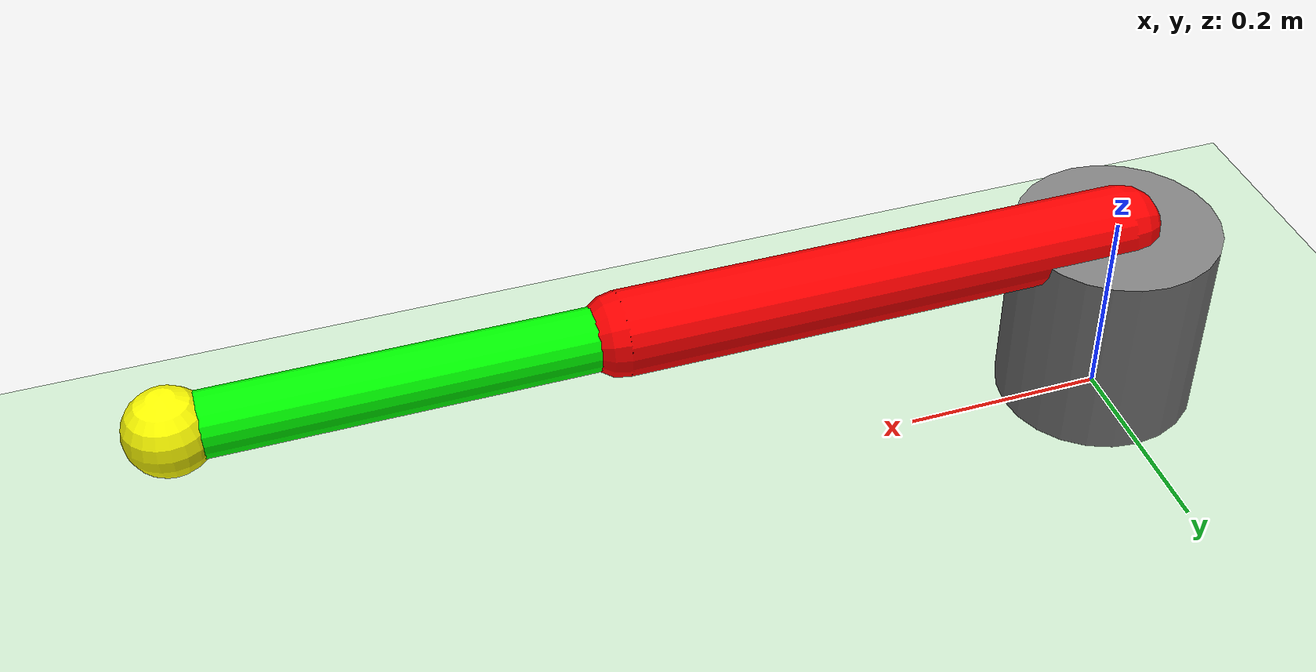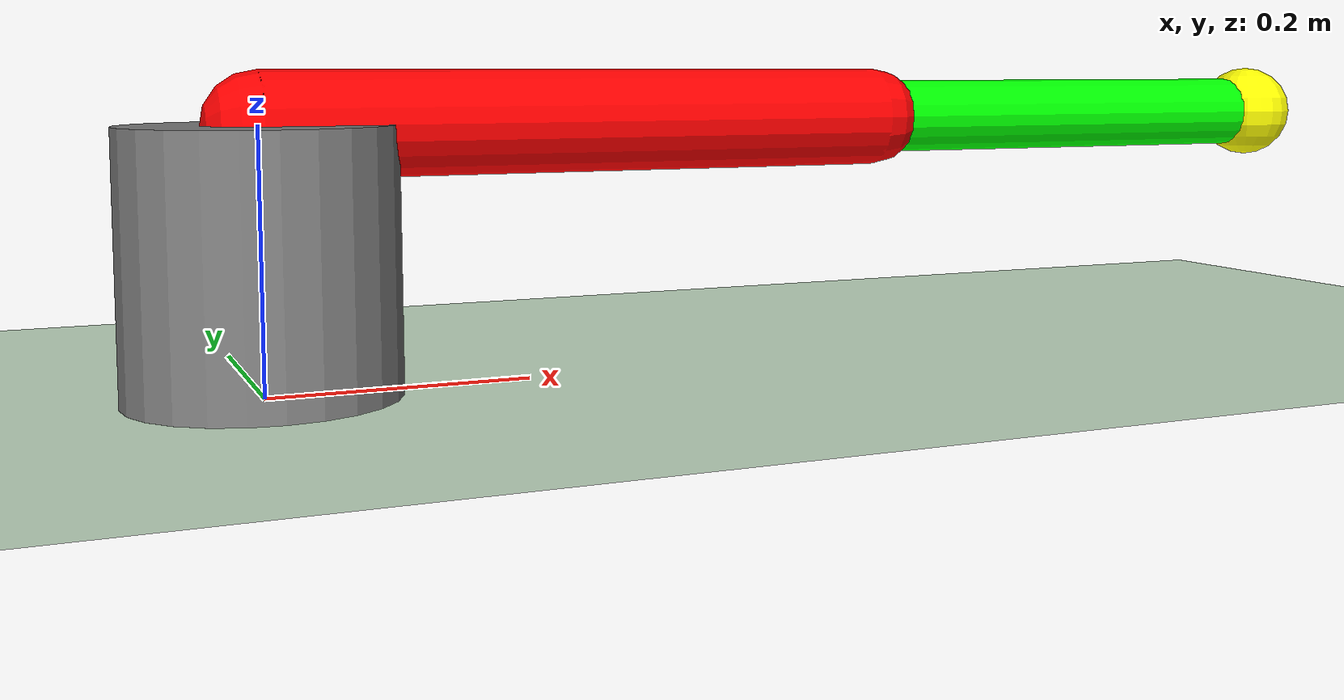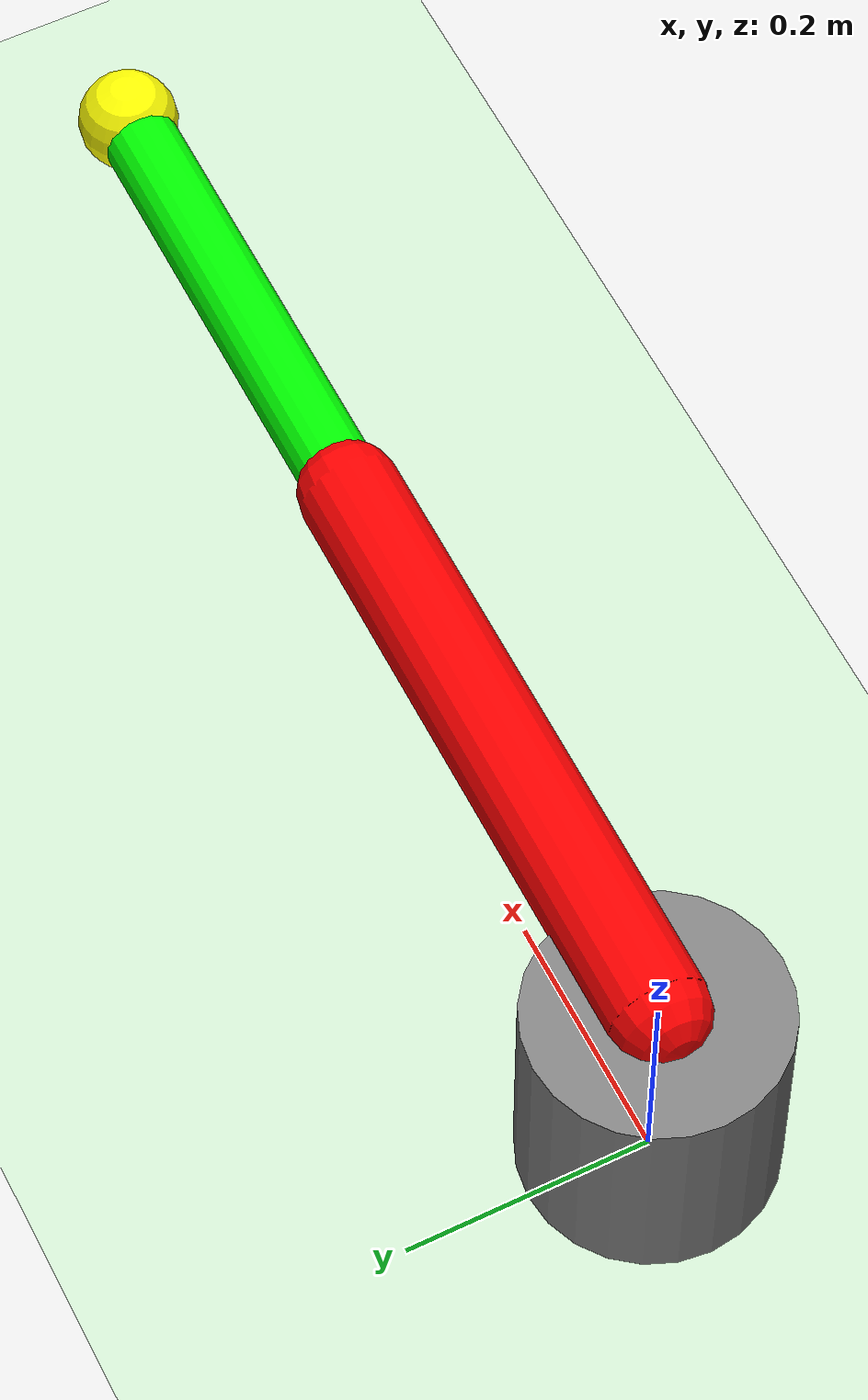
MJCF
<mujoco model="2dof_arm_pid">
    <option gravity="0 0 -9.81" timestep="0.002" />

    <worldbody>
        <light pos="0 0 3" dir="0 0 -1" />
        <geom name="floor" type="plane" size="5 5 0.1" rgba="0.8 0.9 0.8 1" />

        <!-- 로봇 베이스 -->
        <body name="base" pos="0 0 0.1">
            <geom type="cylinder" size="0.1 0.1" rgba="0.5 0.5 0.5 1" />

            <!-- 첫 번째 링크 (어깨) -->
            <body name="link1" pos="0 0 0.1">
                <joint name="joint1" type="hinge" axis="0 0 1" damping="0.1" />
                <geom type="capsule" fromto="0 0 0 0.5 0 0" size="0.04" rgba="1 0 0 1" />

                <!-- 두 번째 링크 (꿈치) -->
                <body name="link2" pos="0.5 0 0">
                    <joint name="joint2" type="hinge" axis="0 0 1" damping="0.1" />
                    <geom type="capsule" fromto="0 0 0 0.4 0 0" size="0.03" rgba="0 1 0 1" />
                    <site name="ee" pos="0.4 0 0" size="0.04" rgba="1 1 0 1" />
                </body>
            </body>
        </body>
    </worldbody>

    <!-- 액추에이터: 토크 모터 사용 -->
    <actuator>
        <motor name="motor1" joint="joint1" gear="10" />
        <motor name="motor2" joint="joint2" gear="5" />
    </actuator>

    <!-- 센서: 관절 위치 및 제어 토크 모니터링 -->
    <sensor>
        <jointpos name="pos1" joint="joint1" />
        <jointpos name="pos2" joint="joint2" />
        <actuatorfrc name="torque1" actuator="motor1" />
        <actuatorfrc name="torque2" actuator="motor2" />
    </sensor>
</mujoco>
